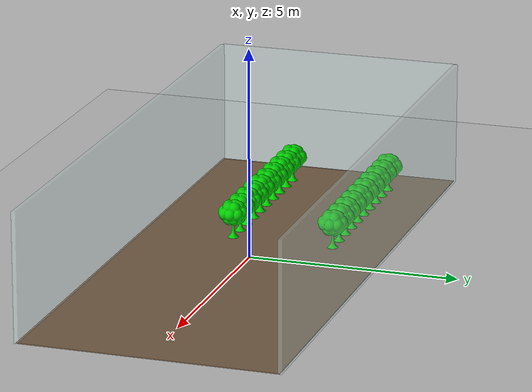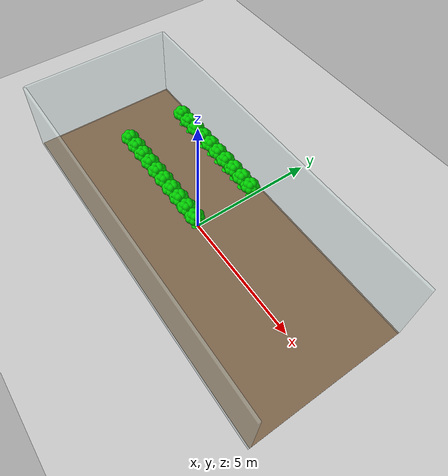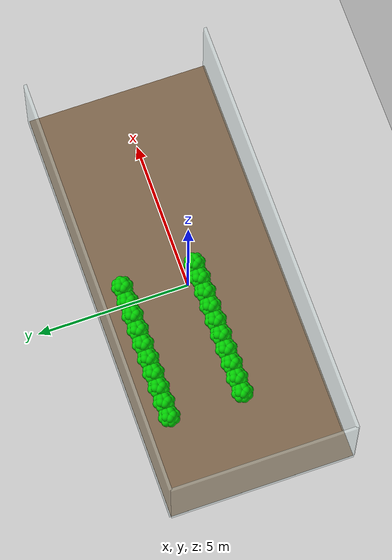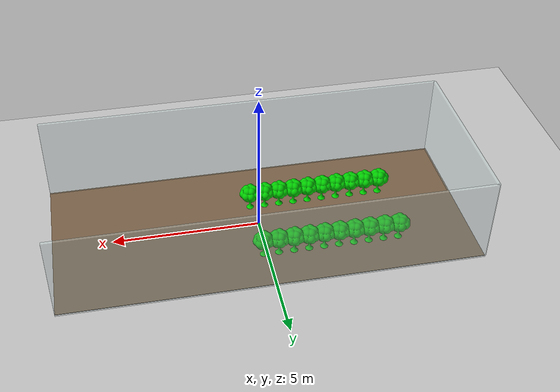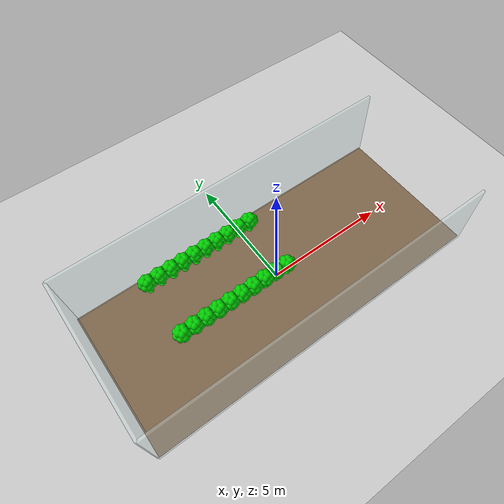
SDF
<sdf version="1.11">
 <world name="greenhouse_world">
  <model name="ground_plane">
   <static>true</static>
   <link name="link">
    <collision name="collision">
     <geometry><plane><normal>0 0 1</normal><size>300 300</size></plane></geometry>
    </collision>
    <visual name="visual">
     <geometry><plane><normal>0 0 1</normal><size>100 100</size></plane></geometry>
     <material>
      <ambient>0.8 0.8 0.8 1</ambient>
      <diffuse>0.8 0.8 0.8 1</diffuse>
      <specular>0.8 0.8 0.8 1</specular>
     </material>
    </visual>
   </link>
  </model>
  <model name="greenhouse_floor">
   <static>true</static>
   <pose>0 0 0.01 0 0 0</pose>
   <link name="link">
    <collision name="collision"><geometry><box><size>14 6 0.02</size></box></geometry></collision>
    <visual name="visual">
     <geometry><box><size>14 6 0.02</size></box></geometry>
     <material>
      <ambient>0.45 0.35 0.25 1</ambient>
      <diffuse>0.50 0.40 0.30 1</diffuse>
      <specular>0.05 0.05 0.05 1</specular>
     </material>
    </visual>
   </link>
  </model>
  <model name="wall_left">
   <static>true</static>
   <pose>0 3 1.5 0 0 0</pose>
   <link name="link">
    <collision name="collision"><geometry><box><size>14 0.1 3.0</size></box></geometry></collision>
    <visual name="visual">
     <geometry><box><size>14 0.1 3.0</size></box></geometry>
     <material>
      <ambient>0.8 0.9 0.9 0.35</ambient>
      <diffuse>0.8 0.9 0.9 0.35</diffuse>
      <specular>0.2 0.2 0.2 0.35</specular>
     </material>
     <transparency>0.5</transparency>
    </visual>
   </link>
  </model>
  <model name="wall_right">
   <static>true</static>
   <pose>0 -3 1.5 0 0 0</pose>
   <link name="link">
    <collision name="collision"><geometry><box><size>14 0.1 3.0</size></box></geometry></collision>
    <visual name="visual">
     <geometry><box><size>14 0.1 3.0</size></box></geometry>
     <material>
      <ambient>0.8 0.9 0.9 0.35</ambient>
      <diffuse>0.8 0.9 0.9 0.35</diffuse>
      <specular>0.2 0.2 0.2 0.35</specular>
     </material>
     <transparency>0.5</transparency>
    </visual>
   </link>
  </model>
  <model name="wall_back">
   <static>true</static>
   <pose>-7 0 1.5 0 0 0</pose>
   <link name="link">
    <collision name="collision"><geometry><box><size>0.1 6 3.0</size></box></geometry></collision>
    <visual name="visual">
     <geometry><box><size>0.1 6 3.0</size></box></geometry>
     <material>
      <ambient>0.8 0.9 0.9 0.35</ambient>
      <diffuse>0.8 0.9 0.9 0.35</diffuse>
      <specular>0.2 0.2 0.2 0.35</specular>
     </material>
     <transparency>0.5</transparency>
    </visual>
   </link>
  </model>
  <model name="vegetable_crop_r1_01">
   <static>true</static>
   <pose>-4.75 1.2 0.30 0 0 0</pose>
   <link name="link">
    <visual name="visual">
     <geometry>
      <mesh>
       <uri>package://chaleBOT_description/worlds/models/vegetable_crop/meshes/vegetable_crop.stl</uri>
       <scale>0.001 0.001 0.001</scale>
      </mesh>
     </geometry>
     <material>
      <ambient>0.0 0.6 0.0 1</ambient>
      <diffuse>0.0 0.8 0.0 1</diffuse>
      <specular>0.1 0.1 0.1 1</specular>
     </material>
    </visual>
    <collision name="collision"><geometry><box><size>0.35 0.35 0.8</size></box></geometry></collision>
   </link>
  </model>
  <model name="vegetable_crop_r1_02">
   <static>true</static>
   <pose>-4.25 1.2 0.30 0 0 0</pose>
   <link name="link">
    <visual name="visual">
     <geometry>
      <mesh>
       <uri>package://chaleBOT_description/worlds/models/vegetable_crop/meshes/vegetable_crop.stl</uri>
       <scale>0.001 0.001 0.001</scale>
      </mesh>
     </geometry>
     <material>
      <ambient>0.0 0.6 0.0 1</ambient>
      <diffuse>0.0 0.8 0.0 1</diffuse>
      <specular>0.1 0.1 0.1 1</specular>
     </material>
    </visual>
    <collision name="collision"><geometry><box><size>0.35 0.35 0.8</size></box></geometry></collision>
   </link>
  </model>
  <model name="vegetable_crop_r1_03">
   <static>true</static>
   <pose>-3.75 1.2 0.30 0 0 0</pose>
   <link name="link">
    <visual name="visual">
     <geometry>
      <mesh>
       <uri>package://chaleBOT_description/worlds/models/vegetable_crop/meshes/vegetable_crop.stl</uri>
       <scale>0.001 0.001 0.001</scale>
      </mesh>
     </geometry>
     <material>
      <ambient>0.0 0.6 0.0 1</ambient>
      <diffuse>0.0 0.8 0.0 1</diffuse>
      <specular>0.1 0.1 0.1 1</specular>
     </material>
    </visual>
    <collision name="collision"><geometry><box><size>0.35 0.35 0.8</size></box></geometry></collision>
   </link>
  </model>
  <model name="vegetable_crop_r1_04">
   <static>true</static>
   <pose>-3.25 1.2 0.30 0 0 0</pose>
   <link name="link">
    <visual name="visual">
     <geometry>
      <mesh>
       <uri>package://chaleBOT_description/worlds/models/vegetable_crop/meshes/vegetable_crop.stl</uri>
       <scale>0.001 0.001 0.001</scale>
      </mesh>
     </geometry>
     <material>
      <ambient>0.0 0.6 0.0 1</ambient>
      <diffuse>0.0 0.8 0.0 1</diffuse>
      <specular>0.1 0.1 0.1 1</specular>
     </material>
    </visual>
    <collision name="collision"><geometry><box><size>0.35 0.35 0.8</size></box></geometry></collision>
   </link>
  </model>
  <model name="vegetable_crop_r1_05">
   <static>true</static>
   <pose>-2.75 1.2 0.30 0 0 0</pose>
   <link name="link">
    <visual name="visual">
     <geometry>
      <mesh>
       <uri>package://chaleBOT_description/worlds/models/vegetable_crop/meshes/vegetable_crop.stl</uri>
       <scale>0.001 0.001 0.001</scale>
      </mesh>
     </geometry>
     <material>
      <ambient>0.0 0.6 0.0 1</ambient>
      <diffuse>0.0 0.8 0.0 1</diffuse>
      <specular>0.1 0.1 0.1 1</specular>
     </material>
    </visual>
    <collision name="collision"><geometry><box><size>0.35 0.35 0.8</size></box></geometry></collision>
   </link>
  </model>
  <model name="vegetable_crop_r1_06">
   <static>true</static>
   <pose>-2.25 1.2 0.30 0 0 0</pose>
   <link name="link">
    <visual name="visual">
     <geometry>
      <mesh>
       <uri>package://chaleBOT_description/worlds/models/vegetable_crop/meshes/vegetable_crop.stl</uri>
       <scale>0.001 0.001 0.001</scale>
      </mesh>
     </geometry>
     <material>
      <ambient>0.0 0.6 0.0 1</ambient>
      <diffuse>0.0 0.8 0.0 1</diffuse>
      <specular>0.1 0.1 0.1 1</specular>
     </material>
    </visual>
    <collision name="collision"><geometry><box><size>0.35 0.35 0.8</size></box></geometry></collision>
   </link>
  </model>
  <model name="vegetable_crop_r1_07">
   <static>true</static>
   <pose>-1.75 1.2 0.30 0 0 0</pose>
   <link name="link">
    <visual name="visual">
     <geometry>
      <mesh>
       <uri>package://chaleBOT_description/worlds/models/vegetable_crop/meshes/vegetable_crop.stl</uri>
       <scale>0.001 0.001 0.001</scale>
      </mesh>
     </geometry>
     <material>
      <ambient>0.0 0.6 0.0 1</ambient>
      <diffuse>0.0 0.8 0.0 1</diffuse>
      <specular>0.1 0.1 0.1 1</specular>
     </material>
    </visual>
    <collision name="collision"><geometry><box><size>0.35 0.35 0.8</size></box></geometry></collision>
   </link>
  </model>
  <model name="vegetable_crop_r1_08">
   <static>true</static>
   <pose>-1.25 1.2 0.30 0 0 0</pose>
   <link name="link">
    <visual name="visual">
     <geometry>
      <mesh>
       <uri>package://chaleBOT_description/worlds/models/vegetable_crop/meshes/vegetable_crop.stl</uri>
       <scale>0.001 0.001 0.001</scale>
      </mesh>
     </geometry>
     <material>
      <ambient>0.0 0.6 0.0 1</ambient>
      <diffuse>0.0 0.8 0.0 1</diffuse>
      <specular>0.1 0.1 0.1 1</specular>
     </material>
    </visual>
    <collision name="collision"><geometry><box><size>0.35 0.35 0.8</size></box></geometry></collision>
   </link>
  </model>
  <model name="vegetable_crop_r1_09">
   <static>true</static>
   <pose>-0.75 1.2 0.30 0 0 0</pose>
   <link name="link">
    <visual name="visual">
     <geometry>
      <mesh>
       <uri>package://chaleBOT_description/worlds/models/vegetable_crop/meshes/vegetable_crop.stl</uri>
       <scale>0.001 0.001 0.001</scale>
      </mesh>
     </geometry>
     <material>
      <ambient>0.0 0.6 0.0 1</ambient>
      <diffuse>0.0 0.8 0.0 1</diffuse>
      <specular>0.1 0.1 0.1 1</specular>
     </material>
    </visual>
    <collision name="collision"><geometry><box><size>0.35 0.35 0.8</size></box></geometry></collision>
   </link>
  </model>
  <model name="vegetable_crop_r1_10">
   <static>true</static>
   <pose>-0.25 1.2 0.30 0 0 0</pose>
   <link name="link">
    <visual name="visual">
     <geometry>
      <mesh>
       <uri>package://chaleBOT_description/worlds/models/vegetable_crop/meshes/vegetable_crop.stl</uri>
       <scale>0.001 0.001 0.001</scale>
      </mesh>
     </geometry>
     <material>
      <ambient>0.0 0.6 0.0 1</ambient>
      <diffuse>0.0 0.8 0.0 1</diffuse>
      <specular>0.1 0.1 0.1 1</specular>
     </material>
    </visual>
    <collision name="collision"><geometry><box><size>0.35 0.35 0.8</size></box></geometry></collision>
   </link>
  </model>
  <model name="vegetable_crop_r2_01">
   <static>true</static>
   <pose>-4.75 -1.2 0.30 0 0 0</pose>
   <link name="link">
    <visual name="visual">
     <geometry>
      <mesh>
       <uri>package://chaleBOT_description/worlds/models/vegetable_crop/meshes/vegetable_crop.stl</uri>
       <scale>0.001 0.001 0.001</scale>
      </mesh>
     </geometry>
     <material>
      <ambient>0.0 0.6 0.0 1</ambient>
      <diffuse>0.0 0.8 0.0 1</diffuse>
      <specular>0.1 0.1 0.1 1</specular>
     </material>
    </visual>
    <collision name="collision"><geometry><box><size>0.35 0.35 0.8</size></box></geometry></collision>
   </link>
  </model>
  <model name="vegetable_crop_r2_02">
   <static>true</static>
   <pose>-4.25 -1.2 0.30 0 0 0</pose>
   <link name="link">
    <visual name="visual">
     <geometry>
      <mesh>
       <uri>package://chaleBOT_description/worlds/models/vegetable_crop/meshes/vegetable_crop.stl</uri>
       <scale>0.001 0.001 0.001</scale>
      </mesh>
     </geometry>
     <material>
      <ambient>0.0 0.6 0.0 1</ambient>
      <diffuse>0.0 0.8 0.0 1</diffuse>
      <specular>0.1 0.1 0.1 1</specular>
     </material>
    </visual>
    <collision name="collision"><geometry><box><size>0.35 0.35 0.8</size></box></geometry></collision>
   </link>
  </model>
  <model name="vegetable_crop_r2_03">
   <static>true</static>
   <pose>-3.75 -1.2 0.30 0 0 0</pose>
   <link name="link">
    <visual name="visual">
     <geometry>
      <mesh>
       <uri>package://chaleBOT_description/worlds/models/vegetable_crop/meshes/vegetable_crop.stl</uri>
       <scale>0.001 0.001 0.001</scale>
      </mesh>
     </geometry>
     <material>
      <ambient>0.0 0.6 0.0 1</ambient>
      <diffuse>0.0 0.8 0.0 1</diffuse>
      <specular>0.1 0.1 0.1 1</specular>
     </material>
    </visual>
    <collision name="collision"><geometry><box><size>0.35 0.35 0.8</size></box></geometry></collision>
   </link>
  </model>
  <model name="vegetable_crop_r2_04">
   <static>true</static>
   <pose>-3.25 -1.2 0.30 0 0 0</pose>
   <link name="link">
    <visual name="visual">
     <geometry>
      <mesh>
       <uri>package://chaleBOT_description/worlds/models/vegetable_crop/meshes/vegetable_crop.stl</uri>
       <scale>0.001 0.001 0.001</scale>
      </mesh>
     </geometry>
     <material>
      <ambient>0.0 0.6 0.0 1</ambient>
      <diffuse>0.0 0.8 0.0 1</diffuse>
      <specular>0.1 0.1 0.1 1</specular>
     </material>
    </visual>
    <collision name="collision"><geometry><box><size>0.35 0.35 0.8</size></box></geometry></collision>
   </link>
  </model>
  <model name="vegetable_crop_r2_05">
   <static>true</static>
   <pose>-2.75 -1.2 0.30 0 0 0</pose>
   <link name="link">
    <visual name="visual">
     <geometry>
      <mesh>
       <uri>package://chaleBOT_description/worlds/models/vegetable_crop/meshes/vegetable_crop.stl</uri>
       <scale>0.001 0.001 0.001</scale>
      </mesh>
     </geometry>
     <material>
      <ambient>0.0 0.6 0.0 1</ambient>
      <diffuse>0.0 0.8 0.0 1</diffuse>
      <specular>0.1 0.1 0.1 1</specular>
     </material>
    </visual>
    <collision name="collision"><geometry><box><size>0.35 0.35 0.8</size></box></geometry></collision>
   </link>
  </model>
  <model name="vegetable_crop_r2_06">
   <static>true</static>
   <pose>-2.25 -1.2 0.30 0 0 0</pose>
   <link name="link">
    <visual name="visual">
     <geometry>
      <mesh>
       <uri>package://chaleBOT_description/worlds/models/vegetable_crop/meshes/vegetable_crop.stl</uri>
       <scale>0.001 0.001 0.001</scale>
      </mesh>
     </geometry>
     <material>
      <ambient>0.0 0.6 0.0 1</ambient>
      <diffuse>0.0 0.8 0.0 1</diffuse>
      <specular>0.1 0.1 0.1 1</specular>
     </material>
    </visual>
    <collision name="collision"><geometry><box><size>0.35 0.35 0.8</size></box></geometry></collision>
   </link>
  </model>
  <model name="vegetable_crop_r2_07">
   <static>true</static>
   <pose>-1.75 -1.2 0.30 0 0 0</pose>
   <link name="link">
    <visual name="visual">
     <geometry>
      <mesh>
       <uri>package://chaleBOT_description/worlds/models/vegetable_crop/meshes/vegetable_crop.stl</uri>
       <scale>0.001 0.001 0.001</scale>
      </mesh>
     </geometry>
     <material>
      <ambient>0.0 0.6 0.0 1</ambient>
      <diffuse>0.0 0.8 0.0 1</diffuse>
      <specular>0.1 0.1 0.1 1</specular>
     </material>
    </visual>
    <collision name="collision"><geometry><box><size>0.35 0.35 0.8</size></box></geometry></collision>
   </link>
  </model>
  <model name="vegetable_crop_r2_08">
   <static>true</static>
   <pose>-1.25 -1.2 0.30 0 0 0</pose>
   <link name="link">
    <visual name="visual">
     <geometry>
      <mesh>
       <uri>package://chaleBOT_description/worlds/models/vegetable_crop/meshes/vegetable_crop.stl</uri>
       <scale>0.001 0.001 0.001</scale>
      </mesh>
     </geometry>
     <material>
      <ambient>0.0 0.6 0.0 1</ambient>
      <diffuse>0.0 0.8 0.0 1</diffuse>
      <specular>0.1 0.1 0.1 1</specular>
     </material>
    </visual>
    <collision name="collision"><geometry><box><size>0.35 0.35 0.8</size></box></geometry></collision>
   </link>
  </model>
  <model name="vegetable_crop_r2_09">
   <static>true</static>
   <pose>-0.75 -1.2 0.30 0 0 0</pose>
   <link name="link">
    <visual name="visual">
     <geometry>
      <mesh>
       <uri>package://chaleBOT_description/worlds/models/vegetable_crop/meshes/vegetable_crop.stl</uri>
       <scale>0.001 0.001 0.001</scale>
      </mesh>
     </geometry>
     <material>
      <ambient>0.0 0.6 0.0 1</ambient>
      <diffuse>0.0 0.8 0.0 1</diffuse>
      <specular>0.1 0.1 0.1 1</specular>
     </material>
    </visual>
    <collision name="collision"><geometry><box><size>0.35 0.35 0.8</size></box></geometry></collision>
   </link>
  </model>
  <model name="vegetable_crop_r2_10">
   <static>true</static>
   <pose>-0.25 -1.2 0.30 0 0 0</pose>
   <link name="link">
    <visual name="visual">
     <geometry>
      <mesh>
       <uri>package://chaleBOT_description/worlds/models/vegetable_crop/meshes/vegetable_crop.stl</uri>
       <scale>0.001 0.001 0.001</scale>
      </mesh>
     </geometry>
     <material>
      <ambient>0.0 0.6 0.0 1</ambient>
      <diffuse>0.0 0.8 0.0 1</diffuse>
      <specular>0.1 0.1 0.1 1</specular>
     </material>
    </visual>
    <collision name="collision"><geometry><box><size>0.35 0.35 0.8</size></box></geometry></collision>
   </link>
  </model>
 </world>
</sdf>
